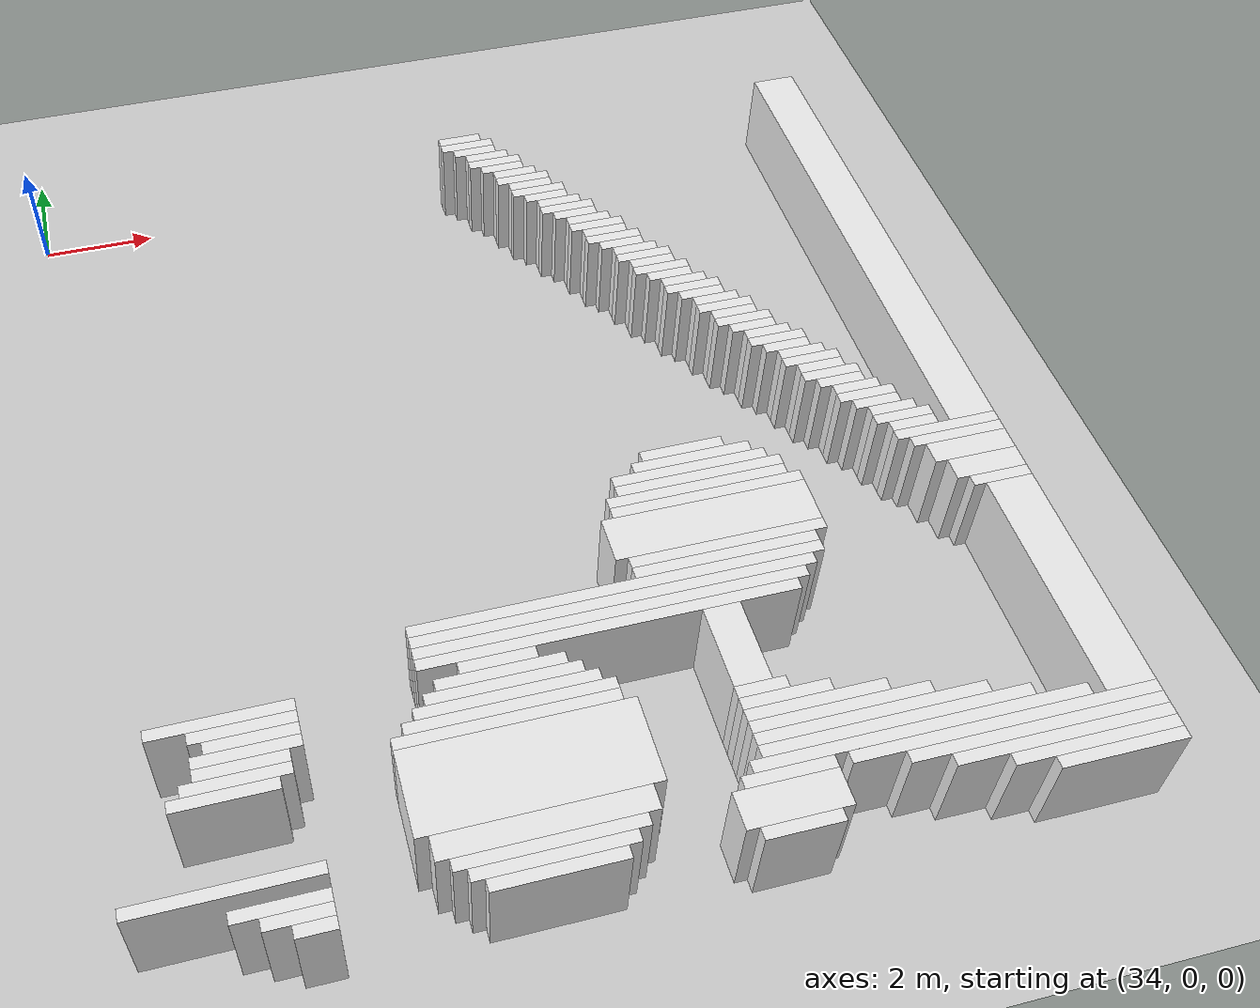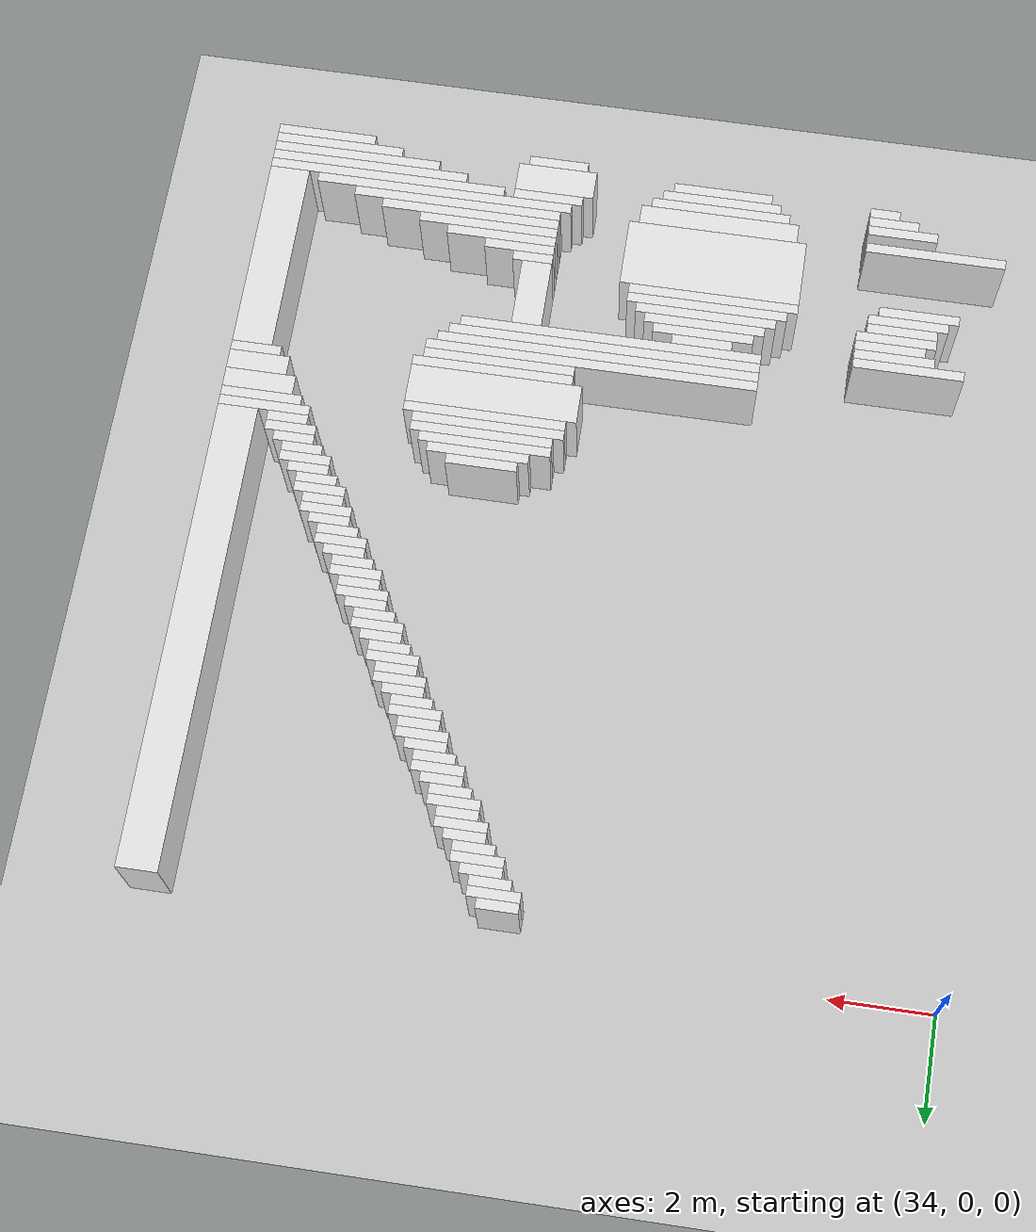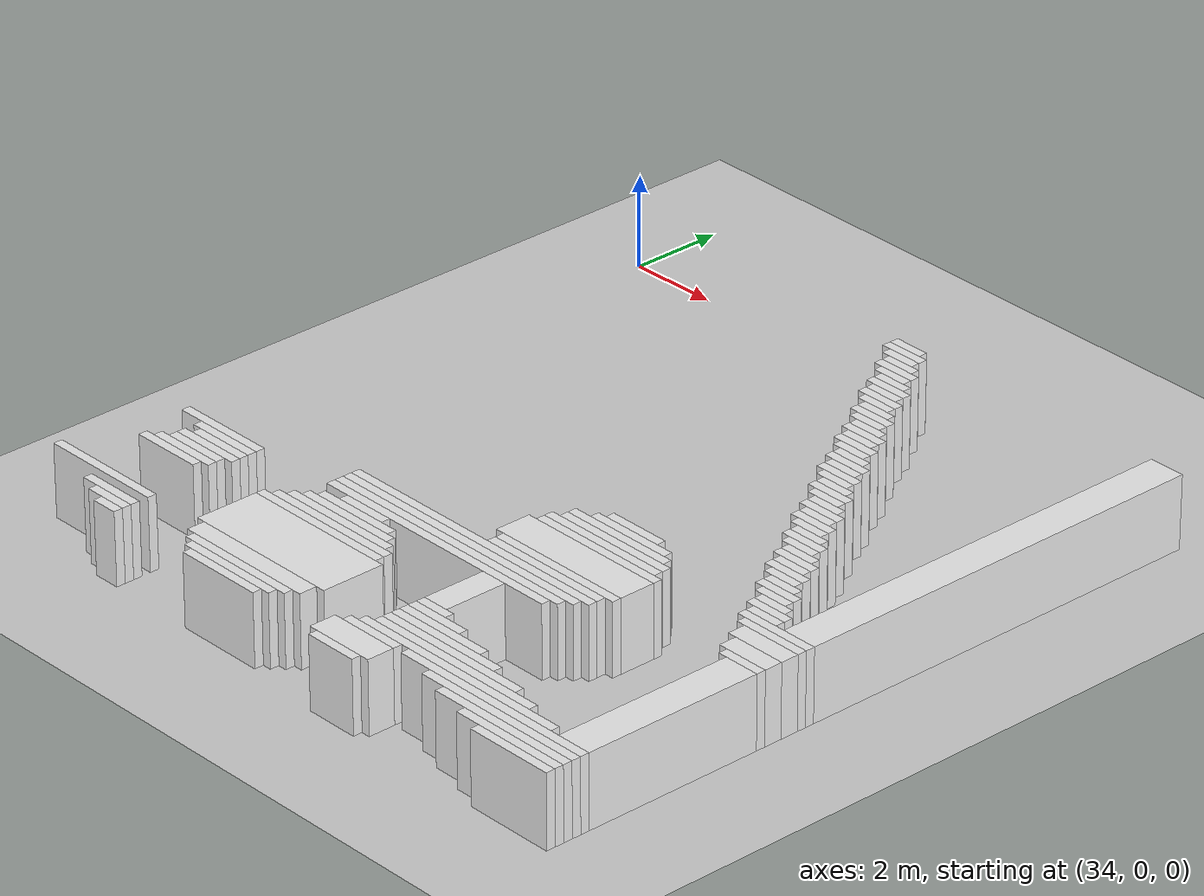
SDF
<sdf version="1.7">
 <world name="default">
  <model name="ground_plane">
   <static>1</static>
   <link name="link">
    <collision name="collision">
     <geometry><plane><normal>0 0 1</normal><size>120 120</size></plane></geometry>
    </collision>
    <visual name="visual">
     <geometry><plane><normal>0 0 1</normal><size>120 120</size></plane></geometry>
     <material>
      <script><uri>file://media/materials/scripts/gazebo.material</uri><name>Gazebo/Grey</name></script>
     </material>
    </visual>
   </link>
  </model>
  <model name="random_complex_01_model">
   <static>1</static>
   <link name="obs_1867">
    <pose>42.2000 -0.5000 0.8000 0 0 0</pose>
    <collision name="obs_1867_col"><geometry><box><size>0.8000 0.2000 1.6000</size></box></geometry></collision>
    <visual name="obs_1867_vis">
     <geometry><box><size>0.8000 0.2000 1.6000</size></box></geometry>
     <material>
      <script><uri>file://media/materials/scripts/gazebo.material</uri><name>Gazebo/White</name></script>
     </material>
    </visual>
   </link>
   <link name="obs_1875">
    <pose>42.3000 -0.7000 0.8000 0 0 0</pose>
    <collision name="obs_1875_col"><geometry><box><size>1.0000 0.2000 1.6000</size></box></geometry></collision>
    <visual name="obs_1875_vis">
     <geometry><box><size>1.0000 0.2000 1.6000</size></box></geometry>
     <material>
      <script><uri>file://media/materials/scripts/gazebo.material</uri><name>Gazebo/White</name></script>
     </material>
    </visual>
   </link>
   <link name="obs_1880">
    <pose>42.4000 -0.9000 0.8000 0 0 0</pose>
    <collision name="obs_1880_col"><geometry><box><size>0.8000 0.2000 1.6000</size></box></geometry></collision>
    <visual name="obs_1880_vis">
     <geometry><box><size>0.8000 0.2000 1.6000</size></box></geometry>
     <material>
      <script><uri>file://media/materials/scripts/gazebo.material</uri><name>Gazebo/White</name></script>
     </material>
    </visual>
   </link>
   <link name="obs_1887">
    <pose>42.6000 -1.1000 0.8000 0 0 0</pose>
    <collision name="obs_1887_col"><geometry><box><size>0.8000 0.2000 1.6000</size></box></geometry></collision>
    <visual name="obs_1887_vis">
     <geometry><box><size>0.8000 0.2000 1.6000</size></box></geometry>
     <material>
      <script><uri>file://media/materials/scripts/gazebo.material</uri><name>Gazebo/White</name></script>
     </material>
    </visual>
   </link>
   <link name="obs_1894">
    <pose>42.7000 -1.3000 0.8000 0 0 0</pose>
    <collision name="obs_1894_col"><geometry><box><size>1.0000 0.2000 1.6000</size></box></geometry></collision>
    <visual name="obs_1894_vis">
     <geometry><box><size>1.0000 0.2000 1.6000</size></box></geometry>
     <material>
      <script><uri>file://media/materials/scripts/gazebo.material</uri><name>Gazebo/White</name></script>
     </material>
    </visual>
   </link>
   <link name="obs_1900">
    <pose>42.8000 -1.5000 0.8000 0 0 0</pose>
    <collision name="obs_1900_col"><geometry><box><size>0.8000 0.2000 1.6000</size></box></geometry></collision>
    <visual name="obs_1900_vis">
     <geometry><box><size>0.8000 0.2000 1.6000</size></box></geometry>
     <material>
      <script><uri>file://media/materials/scripts/gazebo.material</uri><name>Gazebo/White</name></script>
     </material>
    </visual>
   </link>
   <link name="obs_1906">
    <pose>43.0000 -1.7000 0.8000 0 0 0</pose>
    <collision name="obs_1906_col"><geometry><box><size>0.8000 0.2000 1.6000</size></box></geometry></collision>
    <visual name="obs_1906_vis">
     <geometry><box><size>0.8000 0.2000 1.6000</size></box></geometry>
     <material>
      <script><uri>file://media/materials/scripts/gazebo.material</uri><name>Gazebo/White</name></script>
     </material>
    </visual>
   </link>
   <link name="obs_1913">
    <pose>43.1000 -1.9000 0.8000 0 0 0</pose>
    <collision name="obs_1913_col"><geometry><box><size>1.0000 0.2000 1.6000</size></box></geometry></collision>
    <visual name="obs_1913_vis">
     <geometry><box><size>1.0000 0.2000 1.6000</size></box></geometry>
     <material>
      <script><uri>file://media/materials/scripts/gazebo.material</uri><name>Gazebo/White</name></script>
     </material>
    </visual>
   </link>
   <link name="obs_1920">
    <pose>43.2000 -2.1000 0.8000 0 0 0</pose>
    <collision name="obs_1920_col"><geometry><box><size>0.8000 0.2000 1.6000</size></box></geometry></collision>
    <visual name="obs_1920_vis">
     <geometry><box><size>0.8000 0.2000 1.6000</size></box></geometry>
     <material>
      <script><uri>file://media/materials/scripts/gazebo.material</uri><name>Gazebo/White</name></script>
     </material>
    </visual>
   </link>
   <link name="obs_1928">
    <pose>43.3000 -2.3000 0.8000 0 0 0</pose>
    <collision name="obs_1928_col"><geometry><box><size>1.0000 0.2000 1.6000</size></box></geometry></collision>
    <visual name="obs_1928_vis">
     <geometry><box><size>1.0000 0.2000 1.6000</size></box></geometry>
     <material>
      <script><uri>file://media/materials/scripts/gazebo.material</uri><name>Gazebo/White</name></script>
     </material>
    </visual>
   </link>
   <link name="obs_1935">
    <pose>43.4000 -2.5000 0.8000 0 0 0</pose>
    <collision name="obs_1935_col"><geometry><box><size>0.8000 0.2000 1.6000</size></box></geometry></collision>
    <visual name="obs_1935_vis">
     <geometry><box><size>0.8000 0.2000 1.6000</size></box></geometry>
     <material>
      <script><uri>file://media/materials/scripts/gazebo.material</uri><name>Gazebo/White</name></script>
     </material>
    </visual>
   </link>
   <link name="obs_1943">
    <pose>43.6000 -2.7000 0.8000 0 0 0</pose>
    <collision name="obs_1943_col"><geometry><box><size>0.8000 0.2000 1.6000</size></box></geometry></collision>
    <visual name="obs_1943_vis">
     <geometry><box><size>0.8000 0.2000 1.6000</size></box></geometry>
     <material>
      <script><uri>file://media/materials/scripts/gazebo.material</uri><name>Gazebo/White</name></script>
     </material>
    </visual>
   </link>
   <link name="obs_1955">
    <pose>43.7000 -2.9000 0.8000 0 0 0</pose>
    <collision name="obs_1955_col"><geometry><box><size>1.0000 0.2000 1.6000</size></box></geometry></collision>
    <visual name="obs_1955_vis">
     <geometry><box><size>1.0000 0.2000 1.6000</size></box></geometry>
     <material>
      <script><uri>file://media/materials/scripts/gazebo.material</uri><name>Gazebo/White</name></script>
     </material>
    </visual>
   </link>
   <link name="obs_1961">
    <pose>43.8000 -3.1000 0.8000 0 0 0</pose>
    <collision name="obs_1961_col"><geometry><box><size>0.8000 0.2000 1.6000</size></box></geometry></collision>
    <visual name="obs_1961_vis">
     <geometry><box><size>0.8000 0.2000 1.6000</size></box></geometry>
     <material>
      <script><uri>file://media/materials/scripts/gazebo.material</uri><name>Gazebo/White</name></script>
     </material>
    </visual>
   </link>
   <link name="obs_1966">
    <pose>44.0000 -3.3000 0.8000 0 0 0</pose>
    <collision name="obs_1966_col"><geometry><box><size>0.8000 0.2000 1.6000</size></box></geometry></collision>
    <visual name="obs_1966_vis">
     <geometry><box><size>0.8000 0.2000 1.6000</size></box></geometry>
     <material>
      <script><uri>file://media/materials/scripts/gazebo.material</uri><name>Gazebo/White</name></script>
     </material>
    </visual>
   </link>
   <link name="obs_1973">
    <pose>44.1000 -3.5000 0.8000 0 0 0</pose>
    <collision name="obs_1973_col"><geometry><box><size>1.0000 0.2000 1.6000</size></box></geometry></collision>
    <visual name="obs_1973_vis">
     <geometry><box><size>1.0000 0.2000 1.6000</size></box></geometry>
     <material>
      <script><uri>file://media/materials/scripts/gazebo.material</uri><name>Gazebo/White</name></script>
     </material>
    </visual>
   </link>
   <link name="obs_1983">
    <pose>44.2000 -3.7000 0.8000 0 0 0</pose>
    <collision name="obs_1983_col"><geometry><box><size>0.8000 0.2000 1.6000</size></box></geometry></collision>
    <visual name="obs_1983_vis">
     <geometry><box><size>0.8000 0.2000 1.6000</size></box></geometry>
     <material>
      <script><uri>file://media/materials/scripts/gazebo.material</uri><name>Gazebo/White</name></script>
     </material>
    </visual>
   </link>
   <link name="obs_1993">
    <pose>44.3000 -3.9000 0.8000 0 0 0</pose>
    <collision name="obs_1993_col"><geometry><box><size>1.0000 0.2000 1.6000</size></box></geometry></collision>
    <visual name="obs_1993_vis">
     <geometry><box><size>1.0000 0.2000 1.6000</size></box></geometry>
     <material>
      <script><uri>file://media/materials/scripts/gazebo.material</uri><name>Gazebo/White</name></script>
     </material>
    </visual>
   </link>
   <link name="obs_2003">
    <pose>44.4000 -4.1000 0.8000 0 0 0</pose>
    <collision name="obs_2003_col"><geometry><box><size>0.8000 0.2000 1.6000</size></box></geometry></collision>
    <visual name="obs_2003_vis">
     <geometry><box><size>0.8000 0.2000 1.6000</size></box></geometry>
     <material>
      <script><uri>file://media/materials/scripts/gazebo.material</uri><name>Gazebo/White</name></script>
     </material>
    </visual>
   </link>
   <link name="obs_2014">
    <pose>44.6000 -4.3000 0.8000 0 0 0</pose>
    <collision name="obs_2014_col"><geometry><box><size>0.8000 0.2000 1.6000</size></box></geometry></collision>
    <visual name="obs_2014_vis">
     <geometry><box><size>0.8000 0.2000 1.6000</size></box></geometry>
     <material>
      <script><uri>file://media/materials/scripts/gazebo.material</uri><name>Gazebo/White</name></script>
     </material>
    </visual>
   </link>
   <link name="obs_2026">
    <pose>44.7000 -4.5000 0.8000 0 0 0</pose>
    <collision name="obs_2026_col"><geometry><box><size>1.0000 0.2000 1.6000</size></box></geometry></collision>
    <visual name="obs_2026_vis">
     <geometry><box><size>1.0000 0.2000 1.6000</size></box></geometry>
     <material>
      <script><uri>file://media/materials/scripts/gazebo.material</uri><name>Gazebo/White</name></script>
     </material>
    </visual>
   </link>
   <link name="obs_2035">
    <pose>44.8000 -4.7000 0.8000 0 0 0</pose>
    <collision name="obs_2035_col"><geometry><box><size>0.8000 0.2000 1.6000</size></box></geometry></collision>
    <visual name="obs_2035_vis">
     <geometry><box><size>0.8000 0.2000 1.6000</size></box></geometry>
     <material>
      <script><uri>file://media/materials/scripts/gazebo.material</uri><name>Gazebo/White</name></script>
     </material>
    </visual>
   </link>
   <link name="obs_2041">
    <pose>44.9000 -4.9000 0.8000 0 0 0</pose>
    <collision name="obs_2041_col"><geometry><box><size>1.0000 0.2000 1.6000</size></box></geometry></collision>
    <visual name="obs_2041_vis">
     <geometry><box><size>1.0000 0.2000 1.6000</size></box></geometry>
     <material>
      <script><uri>file://media/materials/scripts/gazebo.material</uri><name>Gazebo/White</name></script>
     </material>
    </visual>
   </link>
   <link name="obs_2048">
    <pose>45.0000 -5.1000 0.8000 0 0 0</pose>
    <collision name="obs_2048_col"><geometry><box><size>0.8000 0.2000 1.6000</size></box></geometry></collision>
    <visual name="obs_2048_vis">
     <geometry><box><size>0.8000 0.2000 1.6000</size></box></geometry>
     <material>
      <script><uri>file://media/materials/scripts/gazebo.material</uri><name>Gazebo/White</name></script>
     </material>
    </visual>
   </link>
   <link name="obs_2054">
    <pose>45.2000 -5.3000 0.8000 0 0 0</pose>
    <collision name="obs_2054_col"><geometry><box><size>0.8000 0.2000 1.6000</size></box></geometry></collision>
    <visual name="obs_2054_vis">
     <geometry><box><size>0.8000 0.2000 1.6000</size></box></geometry>
     <material>
      <script><uri>file://media/materials/scripts/gazebo.material</uri><name>Gazebo/White</name></script>
     </material>
    </visual>
   </link>
   <link name="obs_2060">
    <pose>45.3000 -5.5000 0.8000 0 0 0</pose>
    <collision name="obs_2060_col"><geometry><box><size>1.0000 0.2000 1.6000</size></box></geometry></collision>
    <visual name="obs_2060_vis">
     <geometry><box><size>1.0000 0.2000 1.6000</size></box></geometry>
     <material>
      <script><uri>file://media/materials/scripts/gazebo.material</uri><name>Gazebo/White</name></script>
     </material>
    </visual>
   </link>
   <link name="obs_2069">
    <pose>45.4000 -5.7000 0.8000 0 0 0</pose>
    <collision name="obs_2069_col"><geometry><box><size>0.8000 0.2000 1.6000</size></box></geometry></collision>
    <visual name="obs_2069_vis">
     <geometry><box><size>0.8000 0.2000 1.6000</size></box></geometry>
     <material>
      <script><uri>file://media/materials/scripts/gazebo.material</uri><name>Gazebo/White</name></script>
     </material>
    </visual>
   </link>
   <link name="obs_2079">
    <pose>45.6000 -5.9000 0.8000 0 0 0</pose>
    <collision name="obs_2079_col"><geometry><box><size>0.8000 0.2000 1.6000</size></box></geometry></collision>
    <visual name="obs_2079_vis">
     <geometry><box><size>0.8000 0.2000 1.6000</size></box></geometry>
     <material>
      <script><uri>file://media/materials/scripts/gazebo.material</uri><name>Gazebo/White</name></script>
     </material>
    </visual>
   </link>
   <link name="obs_2083">
    <pose>45.7000 -6.1000 0.8000 0 0 0</pose>
    <collision name="obs_2083_col"><geometry><box><size>1.0000 0.2000 1.6000</size></box></geometry></collision>
    <visual name="obs_2083_vis">
     <geometry><box><size>1.0000 0.2000 1.6000</size></box></geometry>
     <material>
      <script><uri>file://media/materials/scripts/gazebo.material</uri><name>Gazebo/White</name></script>
     </material>
    </visual>
   </link>
   <link name="obs_2090">
    <pose>45.8000 -6.3000 0.8000 0 0 0</pose>
    <collision name="obs_2090_col"><geometry><box><size>0.8000 0.2000 1.6000</size></box></geometry></collision>
    <visual name="obs_2090_vis">
     <geometry><box><size>0.8000 0.2000 1.6000</size></box></geometry>
     <material>
      <script><uri>file://media/materials/scripts/gazebo.material</uri><name>Gazebo/White</name></script>
     </material>
    </visual>
   </link>
   <link name="obs_2097">
    <pose>45.9000 -6.5000 0.8000 0 0 0</pose>
    <collision name="obs_2097_col"><geometry><box><size>1.0000 0.2000 1.6000</size></box></geometry></collision>
    <visual name="obs_2097_vis">
     <geometry><box><size>1.0000 0.2000 1.6000</size></box></geometry>
     <material>
      <script><uri>file://media/materials/scripts/gazebo.material</uri><name>Gazebo/White</name></script>
     </material>
    </visual>
   </link>
   <link name="obs_2108">
    <pose>46.0000 -6.7000 0.8000 0 0 0</pose>
    <collision name="obs_2108_col"><geometry><box><size>0.8000 0.2000 1.6000</size></box></geometry></collision>
    <visual name="obs_2108_vis">
     <geometry><box><size>0.8000 0.2000 1.6000</size></box></geometry>
     <material>
      <script><uri>file://media/materials/scripts/gazebo.material</uri><name>Gazebo/White</name></script>
     </material>
    </visual>
   </link>
   <link name="obs_2115">
    <pose>46.2000 -6.9000 0.8000 0 0 0</pose>
    <collision name="obs_2115_col"><geometry><box><size>0.8000 0.2000 1.6000</size></box></geometry></collision>
    <visual name="obs_2115_vis">
     <geometry><box><size>0.8000 0.2000 1.6000</size></box></geometry>
     <material>
      <script><uri>file://media/materials/scripts/gazebo.material</uri><name>Gazebo/White</name></script>
     </material>
    </visual>
   </link>
   <link name="obs_2125">
    <pose>46.3000 -7.1000 0.8000 0 0 0</pose>
    <collision name="obs_2125_col"><geometry><box><size>1.0000 0.2000 1.6000</size></box></geometry></collision>
    <visual name="obs_2125_vis">
     <geometry><box><size>1.0000 0.2000 1.6000</size></box></geometry>
     <material>
      <script><uri>file://media/materials/scripts/gazebo.material</uri><name>Gazebo/White</name></script>
     </material>
    </visual>
   </link>
   <link name="obs_2135">
    <pose>46.4000 -7.3000 0.8000 0 0 0</pose>
    <collision name="obs_2135_col"><geometry><box><size>0.8000 0.2000 1.6000</size></box></geometry></collision>
    <visual name="obs_2135_vis">
     <geometry><box><size>0.8000 0.2000 1.6000</size></box></geometry>
     <material>
      <script><uri>file://media/materials/scripts/gazebo.material</uri><name>Gazebo/White</name></script>
     </material>
    </visual>
   </link>
   <link name="obs_2142">
    <pose>46.6000 -7.5000 0.8000 0 0 0</pose>
    <collision name="obs_2142_col"><geometry><box><size>0.8000 0.2000 1.6000</size></box></geometry></collision>
    <visual name="obs_2142_vis">
     <geometry><box><size>0.8000 0.2000 1.6000</size></box></geometry>
     <material>
      <script><uri>file://media/materials/scripts/gazebo.material</uri><name>Gazebo/White</name></script>
     </material>
    </visual>
   </link>
   <link name="obs_2150">
    <pose>46.7000 -7.7000 0.8000 0 0 0</pose>
    <collision name="obs_2150_col"><geometry><box><size>1.0000 0.2000 1.6000</size></box></geometry></collision>
    <visual name="obs_2150_vis">
     <geometry><box><size>1.0000 0.2000 1.6000</size></box></geometry>
     <material>
      <script><uri>file://media/materials/scripts/gazebo.material</uri><name>Gazebo/White</name></script>
     </material>
    </visual>
   </link>
   <link name="obs_2155">
    <pose>46.8000 -7.9000 0.8000 0 0 0</pose>
    <collision name="obs_2155_col"><geometry><box><size>0.8000 0.2000 1.6000</size></box></geometry></collision>
    <visual name="obs_2155_vis">
     <geometry><box><size>0.8000 0.2000 1.6000</size></box></geometry>
     <material>
      <script><uri>file://media/materials/scripts/gazebo.material</uri><name>Gazebo/White</name></script>
     </material>
    </visual>
   </link>
   <link name="obs_2161">
    <pose>46.9000 -8.1000 0.8000 0 0 0</pose>
    <collision name="obs_2161_col"><geometry><box><size>1.0000 0.2000 1.6000</size></box></geometry></collision>
    <visual name="obs_2161_vis">
     <geometry><box><size>1.0000 0.2000 1.6000</size></box></geometry>
     <material>
      <script><uri>file://media/materials/scripts/gazebo.material</uri><name>Gazebo/White</name></script>
     </material>
    </visual>
   </link>
   <link name="obs_2167">
    <pose>47.0000 -8.3000 0.8000 0 0 0</pose>
    <collision name="obs_2167_col"><geometry><box><size>0.8000 0.2000 1.6000</size></box></geometry></collision>
    <visual name="obs_2167_vis">
     <geometry><box><size>0.8000 0.2000 1.6000</size></box></geometry>
     <material>
      <script><uri>file://media/materials/scripts/gazebo.material</uri><name>Gazebo/White</name></script>
     </material>
    </visual>
   </link>
   <link name="obs_2174">
    <pose>47.2000 -8.5000 0.8000 0 0 0</pose>
    <collision name="obs_2174_col"><geometry><box><size>0.8000 0.2000 1.6000</size></box></geometry></collision>
    <visual name="obs_2174_vis">
     <geometry><box><size>0.8000 0.2000 1.6000</size></box></geometry>
     <material>
      <script><uri>file://media/materials/scripts/gazebo.material</uri><name>Gazebo/White</name></script>
     </material>
    </visual>
   </link>
   <link name="obs_2183">
    <pose>47.3000 -8.7000 0.8000 0 0 0</pose>
    <collision name="obs_2183_col"><geometry><box><size>1.0000 0.2000 1.6000</size></box></geometry></collision>
    <visual name="obs_2183_vis">
     <geometry><box><size>1.0000 0.2000 1.6000</size></box></geometry>
     <material>
      <script><uri>file://media/materials/scripts/gazebo.material</uri><name>Gazebo/White</name></script>
     </material>
    </visual>
   </link>
   <link name="obs_2189">
    <pose>47.4000 -8.9000 0.8000 0 0 0</pose>
    <collision name="obs_2189_col"><geometry><box><size>0.8000 0.2000 1.6000</size></box></geometry></collision>
    <visual name="obs_2189_vis">
     <geometry><box><size>0.8000 0.2000 1.6000</size></box></geometry>
     <material>
      <script><uri>file://media/materials/scripts/gazebo.material</uri><name>Gazebo/White</name></script>
     </material>
    </visual>
   </link>
   <link name="obs_2194">
    <pose>43.9000 -9.1000 0.8000 0 0 0</pose>
    <collision name="obs_2194_col"><geometry><box><size>1.4000 0.2000 1.6000</size></box></geometry></collision>
    <visual name="obs_2194_vis">
     <geometry><box><size>1.4000 0.2000 1.6000</size></box></geometry>
     <material>
      <script><uri>file://media/materials/scripts/gazebo.material</uri><name>Gazebo/White</name></script>
     </material>
    </visual>
   </link>
   <link name="obs_2195">
    <pose>47.6000 -9.1000 0.8000 0 0 0</pose>
    <collision name="obs_2195_col"><geometry><box><size>0.8000 0.2000 1.6000</size></box></geometry></collision>
    <visual name="obs_2195_vis">
     <geometry><box><size>0.8000 0.2000 1.6000</size></box></geometry>
     <material>
      <script><uri>file://media/materials/scripts/gazebo.material</uri><name>Gazebo/White</name></script>
     </material>
    </visual>
   </link>
   <link name="obs_2200">
    <pose>44.0000 -9.3000 0.8000 0 0 0</pose>
    <collision name="obs_2200_col"><geometry><box><size>2.0000 0.2000 1.6000</size></box></geometry></collision>
    <visual name="obs_2200_vis">
     <geometry><box><size>2.0000 0.2000 1.6000</size></box></geometry>
     <material>
      <script><uri>file://media/materials/scripts/gazebo.material</uri><name>Gazebo/White</name></script>
     </material>
    </visual>
   </link>
   <link name="obs_2201">
    <pose>47.7000 -9.3000 0.8000 0 0 0</pose>
    <collision name="obs_2201_col"><geometry><box><size>1.0000 0.2000 1.6000</size></box></geometry></collision>
    <visual name="obs_2201_vis">
     <geometry><box><size>1.0000 0.2000 1.6000</size></box></geometry>
     <material>
      <script><uri>file://media/materials/scripts/gazebo.material</uri><name>Gazebo/White</name></script>
     </material>
    </visual>
   </link>
   <link name="obs_2202">
    <pose>48.8000 -4.9000 0.8000 0 0 0</pose>
    <collision name="obs_2202_col"><geometry><box><size>0.8000 9.4000 1.6000</size></box></geometry></collision>
    <visual name="obs_2202_vis">
     <geometry><box><size>0.8000 9.4000 1.6000</size></box></geometry>
     <material>
      <script><uri>file://media/materials/scripts/gazebo.material</uri><name>Gazebo/White</name></script>
     </material>
    </visual>
   </link>
   <link name="obs_2207">
    <pose>43.9000 -9.5000 0.8000 0 0 0</pose>
    <collision name="obs_2207_col"><geometry><box><size>2.6000 0.2000 1.6000</size></box></geometry></collision>
    <visual name="obs_2207_vis">
     <geometry><box><size>2.6000 0.2000 1.6000</size></box></geometry>
     <material>
      <script><uri>file://media/materials/scripts/gazebo.material</uri><name>Gazebo/White</name></script>
     </material>
    </visual>
   </link>
   <link name="obs_2208">
    <pose>47.8000 -9.5000 0.8000 0 0 0</pose>
    <collision name="obs_2208_col"><geometry><box><size>0.8000 0.2000 1.6000</size></box></geometry></collision>
    <visual name="obs_2208_vis">
     <geometry><box><size>0.8000 0.2000 1.6000</size></box></geometry>
     <material>
      <script><uri>file://media/materials/scripts/gazebo.material</uri><name>Gazebo/White</name></script>
     </material>
    </visual>
   </link>
   <link name="obs_2213">
    <pose>44.0000 -9.7000 0.8000 0 0 0</pose>
    <collision name="obs_2213_col"><geometry><box><size>2.8000 0.2000 1.6000</size></box></geometry></collision>
    <visual name="obs_2213_vis">
     <geometry><box><size>2.8000 0.2000 1.6000</size></box></geometry>
     <material>
      <script><uri>file://media/materials/scripts/gazebo.material</uri><name>Gazebo/White</name></script>
     </material>
    </visual>
   </link>
   <link name="obs_2214">
    <pose>48.3000 -9.7000 0.8000 0 0 0</pose>
    <collision name="obs_2214_col"><geometry><box><size>1.8000 0.2000 1.6000</size></box></geometry></collision>
    <visual name="obs_2214_vis">
     <geometry><box><size>1.8000 0.2000 1.6000</size></box></geometry>
     <material>
      <script><uri>file://media/materials/scripts/gazebo.material</uri><name>Gazebo/White</name></script>
     </material>
    </visual>
   </link>
   <link name="obs_2219">
    <pose>43.9000 -9.9000 0.8000 0 0 0</pose>
    <collision name="obs_2219_col"><geometry><box><size>3.0000 0.2000 1.6000</size></box></geometry></collision>
    <visual name="obs_2219_vis">
     <geometry><box><size>3.0000 0.2000 1.6000</size></box></geometry>
     <material>
      <script><uri>file://media/materials/scripts/gazebo.material</uri><name>Gazebo/White</name></script>
     </material>
    </visual>
   </link>
   <link name="obs_2220">
    <pose>48.4000 -9.9000 0.8000 0 0 0</pose>
    <collision name="obs_2220_col"><geometry><box><size>1.6000 0.2000 1.6000</size></box></geometry></collision>
    <visual name="obs_2220_vis">
     <geometry><box><size>1.6000 0.2000 1.6000</size></box></geometry>
     <material>
      <script><uri>file://media/materials/scripts/gazebo.material</uri><name>Gazebo/White</name></script>
     </material>
    </visual>
   </link>
   <link name="obs_2225">
    <pose>44.0000 -10.1000 0.8000 0 0 0</pose>
    <collision name="obs_2225_col"><geometry><box><size>3.2000 0.2000 1.6000</size></box></geometry></collision>
    <visual name="obs_2225_vis">
     <geometry><box><size>3.2000 0.2000 1.6000</size></box></geometry>
     <material>
      <script><uri>file://media/materials/scripts/gazebo.material</uri><name>Gazebo/White</name></script>
     </material>
    </visual>
   </link>
   <link name="obs_2226">
    <pose>48.5000 -10.2000 0.8000 0 0 0</pose>
    <collision name="obs_2226_col"><geometry><box><size>1.4000 0.4000 1.6000</size></box></geometry></collision>
    <visual name="obs_2226_vis">
     <geometry><box><size>1.4000 0.4000 1.6000</size></box></geometry>
     <material>
      <script><uri>file://media/materials/scripts/gazebo.material</uri><name>Gazebo/White</name></script>
     </material>
    </visual>
   </link>
   <link name="obs_2238">
    <pose>48.6000 -10.6000 0.8000 0 0 0</pose>
    <collision name="obs_2238_col"><geometry><box><size>1.2000 0.4000 1.6000</size></box></geometry></collision>
    <visual name="obs_2238_vis">
     <geometry><box><size>1.2000 0.4000 1.6000</size></box></geometry>
     <material>
      <script><uri>file://media/materials/scripts/gazebo.material</uri><name>Gazebo/White</name></script>
     </material>
    </visual>
   </link>
   <link name="obs_2244">
    <pose>43.9000 -10.6000 0.8000 0 0 0</pose>
    <collision name="obs_2244_col"><geometry><box><size>3.4000 0.8000 1.6000</size></box></geometry></collision>
    <visual name="obs_2244_vis">
     <geometry><box><size>3.4000 0.8000 1.6000</size></box></geometry>
     <material>
      <script><uri>file://media/materials/scripts/gazebo.material</uri><name>Gazebo/White</name></script>
     </material>
    </visual>
   </link>
   <link name="obs_2253">
    <pose>48.7000 -10.9000 0.8000 0 0 0</pose>
    <collision name="obs_2253_col"><geometry><box><size>1.0000 0.2000 1.6000</size></box></geometry></collision>
    <visual name="obs_2253_vis">
     <geometry><box><size>1.0000 0.2000 1.6000</size></box></geometry>
     <material>
      <script><uri>file://media/materials/scripts/gazebo.material</uri><name>Gazebo/White</name></script>
     </material>
    </visual>
   </link>
   <link name="obs_2261">
    <pose>44.0000 -11.1000 0.8000 0 0 0</pose>
    <collision name="obs_2261_col"><geometry><box><size>3.2000 0.2000 1.6000</size></box></geometry></collision>
    <visual name="obs_2261_vis">
     <geometry><box><size>3.2000 0.2000 1.6000</size></box></geometry>
     <material>
      <script><uri>file://media/materials/scripts/gazebo.material</uri><name>Gazebo/White</name></script>
     </material>
    </visual>
   </link>
   <link name="obs_2265">
    <pose>43.9000 -11.3000 0.8000 0 0 0</pose>
    <collision name="obs_2265_col"><geometry><box><size>3.0000 0.2000 1.6000</size></box></geometry></collision>
    <visual name="obs_2265_vis">
     <geometry><box><size>3.0000 0.2000 1.6000</size></box></geometry>
     <material>
      <script><uri>file://media/materials/scripts/gazebo.material</uri><name>Gazebo/White</name></script>
     </material>
    </visual>
   </link>
   <link name="obs_2270">
    <pose>42.1000 -11.5000 0.8000 0 0 0</pose>
    <collision name="obs_2270_col"><geometry><box><size>6.6000 0.2000 1.6000</size></box></geometry></collision>
    <visual name="obs_2270_vis">
     <geometry><box><size>6.6000 0.2000 1.6000</size></box></geometry>
     <material>
      <script><uri>file://media/materials/scripts/gazebo.material</uri><name>Gazebo/White</name></script>
     </material>
    </visual>
   </link>
   <link name="obs_2278">
    <pose>42.0000 -11.7000 0.8000 0 0 0</pose>
    <collision name="obs_2278_col"><geometry><box><size>6.4000 0.2000 1.6000</size></box></geometry></collision>
    <visual name="obs_2278_vis">
     <geometry><box><size>6.4000 0.2000 1.6000</size></box></geometry>
     <material>
      <script><uri>file://media/materials/scripts/gazebo.material</uri><name>Gazebo/White</name></script>
     </material>
    </visual>
   </link>
   <link name="obs_2284">
    <pose>41.9000 -11.9000 0.8000 0 0 0</pose>
    <collision name="obs_2284_col"><geometry><box><size>6.2000 0.2000 1.6000</size></box></geometry></collision>
    <visual name="obs_2284_vis">
     <geometry><box><size>6.2000 0.2000 1.6000</size></box></geometry>
     <material>
      <script><uri>file://media/materials/scripts/gazebo.material</uri><name>Gazebo/White</name></script>
     </material>
    </visual>
   </link>
   <link name="obs_2290">
    <pose>41.8000 -12.1000 0.8000 0 0 0</pose>
    <collision name="obs_2290_col"><geometry><box><size>6.0000 0.2000 1.6000</size></box></geometry></collision>
    <visual name="obs_2290_vis">
     <geometry><box><size>6.0000 0.2000 1.6000</size></box></geometry>
     <material>
      <script><uri>file://media/materials/scripts/gazebo.material</uri><name>Gazebo/White</name></script>
     </material>
    </visual>
   </link>
   <link name="obs_2294">
    <pose>35.9000 -12.3000 0.8000 0 0 0</pose>
    <collision name="obs_2294_col"><geometry><box><size>2.2000 0.2000 1.6000</size></box></geometry></collision>
    <visual name="obs_2294_vis">
     <geometry><box><size>2.2000 0.2000 1.6000</size></box></geometry>
     <material>
      <script><uri>file://media/materials/scripts/gazebo.material</uri><name>Gazebo/White</name></script>
     </material>
    </visual>
   </link>
   <link name="obs_2295">
    <pose>40.0000 -12.3000 0.8000 0 0 0</pose>
    <collision name="obs_2295_col"><geometry><box><size>1.2000 0.2000 1.6000</size></box></geometry></collision>
    <visual name="obs_2295_vis">
     <geometry><box><size>1.2000 0.2000 1.6000</size></box></geometry>
     <material>
      <script><uri>file://media/materials/scripts/gazebo.material</uri><name>Gazebo/White</name></script>
     </material>
    </visual>
   </link>
   <link name="obs_2305">
    <pose>36.2000 -12.5000 0.8000 0 0 0</pose>
    <collision name="obs_2305_col"><geometry><box><size>1.6000 0.2000 1.6000</size></box></geometry></collision>
    <visual name="obs_2305_vis">
     <geometry><box><size>1.6000 0.2000 1.6000</size></box></geometry>
     <material>
      <script><uri>file://media/materials/scripts/gazebo.material</uri><name>Gazebo/White</name></script>
     </material>
    </visual>
   </link>
   <link name="obs_2306">
    <pose>40.0000 -12.5000 0.8000 0 0 0</pose>
    <collision name="obs_2306_col"><geometry><box><size>2.0000 0.2000 1.6000</size></box></geometry></collision>
    <visual name="obs_2306_vis">
     <geometry><box><size>2.0000 0.2000 1.6000</size></box></geometry>
     <material>
      <script><uri>file://media/materials/scripts/gazebo.material</uri><name>Gazebo/White</name></script>
     </material>
    </visual>
   </link>
   <link name="obs_2311">
    <pose>36.3000 -12.7000 0.8000 0 0 0</pose>
    <collision name="obs_2311_col"><geometry><box><size>1.4000 0.2000 1.6000</size></box></geometry></collision>
    <visual name="obs_2311_vis">
     <geometry><box><size>1.4000 0.2000 1.6000</size></box></geometry>
     <material>
      <script><uri>file://media/materials/scripts/gazebo.material</uri><name>Gazebo/White</name></script>
     </material>
    </visual>
   </link>
   <link name="obs_2312">
    <pose>40.0000 -12.7000 0.8000 0 0 0</pose>
    <collision name="obs_2312_col"><geometry><box><size>2.4000 0.2000 1.6000</size></box></geometry></collision>
    <visual name="obs_2312_vis">
     <geometry><box><size>2.4000 0.2000 1.6000</size></box></geometry>
     <material>
      <script><uri>file://media/materials/scripts/gazebo.material</uri><name>Gazebo/White</name></script>
     </material>
    </visual>
   </link>
   <link name="obs_2315">
    <pose>36.2000 -12.9000 0.8000 0 0 0</pose>
    <collision name="obs_2315_col"><geometry><box><size>1.6000 0.2000 1.6000</size></box></geometry></collision>
    <visual name="obs_2315_vis">
     <geometry><box><size>1.6000 0.2000 1.6000</size></box></geometry>
     <material>
      <script><uri>file://media/materials/scripts/gazebo.material</uri><name>Gazebo/White</name></script>
     </material>
    </visual>
   </link>
   <link name="obs_2316">
    <pose>40.0000 -12.9000 0.8000 0 0 0</pose>
    <collision name="obs_2316_col"><geometry><box><size>2.8000 0.2000 1.6000</size></box></geometry></collision>
    <visual name="obs_2316_vis">
     <geometry><box><size>2.8000 0.2000 1.6000</size></box></geometry>
     <material>
      <script><uri>file://media/materials/scripts/gazebo.material</uri><name>Gazebo/White</name></script>
     </material>
    </visual>
   </link>
   <link name="obs_2323">
    <pose>36.1000 -13.1000 0.8000 0 0 0</pose>
    <collision name="obs_2323_col"><geometry><box><size>1.4000 0.2000 1.6000</size></box></geometry></collision>
    <visual name="obs_2323_vis">
     <geometry><box><size>1.4000 0.2000 1.6000</size></box></geometry>
     <material>
      <script><uri>file://media/materials/scripts/gazebo.material</uri><name>Gazebo/White</name></script>
     </material>
    </visual>
   </link>
   <link name="obs_2324">
    <pose>40.0000 -13.1000 0.8000 0 0 0</pose>
    <collision name="obs_2324_col"><geometry><box><size>3.2000 0.2000 1.6000</size></box></geometry></collision>
    <visual name="obs_2324_vis">
     <geometry><box><size>3.2000 0.2000 1.6000</size></box></geometry>
     <material>
      <script><uri>file://media/materials/scripts/gazebo.material</uri><name>Gazebo/White</name></script>
     </material>
    </visual>
   </link>
   <link name="obs_2329">
    <pose>36.0000 -13.3000 0.8000 0 0 0</pose>
    <collision name="obs_2329_col"><geometry><box><size>1.6000 0.2000 1.6000</size></box></geometry></collision>
    <visual name="obs_2329_vis">
     <geometry><box><size>1.6000 0.2000 1.6000</size></box></geometry>
     <material>
      <script><uri>file://media/materials/scripts/gazebo.material</uri><name>Gazebo/White</name></script>
     </material>
    </visual>
   </link>
   <link name="obs_2330">
    <pose>39.9000 -13.3000 0.8000 0 0 0</pose>
    <collision name="obs_2330_col"><geometry><box><size>3.4000 0.2000 1.6000</size></box></geometry></collision>
    <visual name="obs_2330_vis">
     <geometry><box><size>3.4000 0.2000 1.6000</size></box></geometry>
     <material>
      <script><uri>file://media/materials/scripts/gazebo.material</uri><name>Gazebo/White</name></script>
     </material>
    </visual>
   </link>
   <link name="obs_2331">
    <pose>43.5000 -12.9000 0.8000 0 0 0</pose>
    <collision name="obs_2331_col"><geometry><box><size>0.6000 1.4000 1.6000</size></box></geometry></collision>
    <visual name="obs_2331_vis">
     <geometry><box><size>0.6000 1.4000 1.6000</size></box></geometry>
     <material>
      <script><uri>file://media/materials/scripts/gazebo.material</uri><name>Gazebo/White</name></script>
     </material>
    </visual>
   </link>
   <link name="obs_2337">
    <pose>35.8000 -13.5000 0.8000 0 0 0</pose>
    <collision name="obs_2337_col"><geometry><box><size>1.6000 0.2000 1.6000</size></box></geometry></collision>
    <visual name="obs_2337_vis">
     <geometry><box><size>1.6000 0.2000 1.6000</size></box></geometry>
     <material>
      <script><uri>file://media/materials/scripts/gazebo.material</uri><name>Gazebo/White</name></script>
     </material>
    </visual>
   </link>
   <link name="obs_2345">
    <pose>43.6000 -13.7000 0.8000 0 0 0</pose>
    <collision name="obs_2345_col"><geometry><box><size>0.8000 0.2000 1.6000</size></box></geometry></collision>
    <visual name="obs_2345_vis">
     <geometry><box><size>0.8000 0.2000 1.6000</size></box></geometry>
     <material>
      <script><uri>file://media/materials/scripts/gazebo.material</uri><name>Gazebo/White</name></script>
     </material>
    </visual>
   </link>
   <link name="obs_2352">
    <pose>43.9000 -13.9000 0.8000 0 0 0</pose>
    <collision name="obs_2352_col"><geometry><box><size>1.4000 0.2000 1.6000</size></box></geometry></collision>
    <visual name="obs_2352_vis">
     <geometry><box><size>1.4000 0.2000 1.6000</size></box></geometry>
     <material>
      <script><uri>file://media/materials/scripts/gazebo.material</uri><name>Gazebo/White</name></script>
     </material>
    </visual>
   </link>
   <link name="obs_2358">
    <pose>44.3000 -14.1000 0.8000 0 0 0</pose>
    <collision name="obs_2358_col"><geometry><box><size>2.2000 0.2000 1.6000</size></box></geometry></collision>
    <visual name="obs_2358_vis">
     <geometry><box><size>2.2000 0.2000 1.6000</size></box></geometry>
     <material>
      <script><uri>file://media/materials/scripts/gazebo.material</uri><name>Gazebo/White</name></script>
     </material>
    </visual>
   </link>
   <link name="obs_2365">
    <pose>44.6000 -14.3000 0.8000 0 0 0</pose>
    <collision name="obs_2365_col"><geometry><box><size>2.8000 0.2000 1.6000</size></box></geometry></collision>
    <visual name="obs_2365_vis">
     <geometry><box><size>2.8000 0.2000 1.6000</size></box></geometry>
     <material>
      <script><uri>file://media/materials/scripts/gazebo.material</uri><name>Gazebo/White</name></script>
     </material>
    </visual>
   </link>
   <link name="obs_2372">
    <pose>45.0000 -14.5000 0.8000 0 0 0</pose>
    <collision name="obs_2372_col"><geometry><box><size>3.6000 0.2000 1.6000</size></box></geometry></collision>
    <visual name="obs_2372_vis">
     <geometry><box><size>3.6000 0.2000 1.6000</size></box></geometry>
     <material>
      <script><uri>file://media/materials/scripts/gazebo.material</uri><name>Gazebo/White</name></script>
     </material>
    </visual>
   </link>
   <link name="obs_2373">
    <pose>40.0000 -14.1000 0.8000 0 0 0</pose>
    <collision name="obs_2373_col"><geometry><box><size>3.6000 1.4000 1.6000</size></box></geometry></collision>
    <visual name="obs_2373_vis">
     <geometry><box><size>3.6000 1.4000 1.6000</size></box></geometry>
     <material>
      <script><uri>file://media/materials/scripts/gazebo.material</uri><name>Gazebo/White</name></script>
     </material>
    </visual>
   </link>
   <link name="obs_2381">
    <pose>45.3000 -14.7000 0.8000 0 0 0</pose>
    <collision name="obs_2381_col"><geometry><box><size>4.2000 0.2000 1.6000</size></box></geometry></collision>
    <visual name="obs_2381_vis">
     <geometry><box><size>4.2000 0.2000 1.6000</size></box></geometry>
     <material>
      <script><uri>file://media/materials/scripts/gazebo.material</uri><name>Gazebo/White</name></script>
     </material>
    </visual>
   </link>
   <link name="obs_2382">
    <pose>48.8000 -13.0000 0.8000 0 0 0</pose>
    <collision name="obs_2382_col"><geometry><box><size>0.8000 4.0000 1.6000</size></box></geometry></collision>
    <visual name="obs_2382_vis">
     <geometry><box><size>0.8000 4.0000 1.6000</size></box></geometry>
     <material>
      <script><uri>file://media/materials/scripts/gazebo.material</uri><name>Gazebo/White</name></script>
     </material>
    </visual>
   </link>
   <link name="obs_2391">
    <pose>35.6000 -14.9000 0.8000 0 0 0</pose>
    <collision name="obs_2391_col"><geometry><box><size>2.8000 0.2000 1.6000</size></box></geometry></collision>
    <visual name="obs_2391_vis">
     <geometry><box><size>2.8000 0.2000 1.6000</size></box></geometry>
     <material>
      <script><uri>file://media/materials/scripts/gazebo.material</uri><name>Gazebo/White</name></script>
     </material>
    </visual>
   </link>
   <link name="obs_2392">
    <pose>45.6000 -14.9000 0.8000 0 0 0</pose>
    <collision name="obs_2392_col"><geometry><box><size>5.2000 0.2000 1.6000</size></box></geometry></collision>
    <visual name="obs_2392_vis">
     <geometry><box><size>5.2000 0.2000 1.6000</size></box></geometry>
     <material>
      <script><uri>file://media/materials/scripts/gazebo.material</uri><name>Gazebo/White</name></script>
     </material>
    </visual>
   </link>
   <link name="obs_2396">
    <pose>40.0000 -15.0000 0.8000 0 0 0</pose>
    <collision name="obs_2396_col"><geometry><box><size>3.2000 0.4000 1.6000</size></box></geometry></collision>
    <visual name="obs_2396_vis">
     <geometry><box><size>3.2000 0.4000 1.6000</size></box></geometry>
     <material>
      <script><uri>file://media/materials/scripts/gazebo.material</uri><name>Gazebo/White</name></script>
     </material>
    </visual>
   </link>
   <link name="obs_2405">
    <pose>43.5000 -15.1000 0.8000 0 0 0</pose>
    <collision name="obs_2405_col"><geometry><box><size>1.4000 0.2000 1.6000</size></box></geometry></collision>
    <visual name="obs_2405_vis">
     <geometry><box><size>1.4000 0.2000 1.6000</size></box></geometry>
     <material>
      <script><uri>file://media/materials/scripts/gazebo.material</uri><name>Gazebo/White</name></script>
     </material>
    </visual>
   </link>
   <link name="obs_2406">
    <pose>46.8000 -15.1000 0.8000 0 0 0</pose>
    <collision name="obs_2406_col"><geometry><box><size>4.8000 0.2000 1.6000</size></box></geometry></collision>
    <visual name="obs_2406_vis">
     <geometry><box><size>4.8000 0.2000 1.6000</size></box></geometry>
     <material>
      <script><uri>file://media/materials/scripts/gazebo.material</uri><name>Gazebo/White</name></script>
     </material>
    </visual>
   </link>
   <link name="obs_2417">
    <pose>36.3000 -15.3000 0.8000 0 0 0</pose>
    <collision name="obs_2417_col"><geometry><box><size>1.4000 0.2000 1.6000</size></box></geometry></collision>
    <visual name="obs_2417_vis">
     <geometry><box><size>1.4000 0.2000 1.6000</size></box></geometry>
     <material>
      <script><uri>file://media/materials/scripts/gazebo.material</uri><name>Gazebo/White</name></script>
     </material>
    </visual>
   </link>
   <link name="obs_2418">
    <pose>40.0000 -15.3000 0.8000 0 0 0</pose>
    <collision name="obs_2418_col"><geometry><box><size>2.8000 0.2000 1.6000</size></box></geometry></collision>
    <visual name="obs_2418_vis">
     <geometry><box><size>2.8000 0.2000 1.6000</size></box></geometry>
     <material>
      <script><uri>file://media/materials/scripts/gazebo.material</uri><name>Gazebo/White</name></script>
     </material>
    </visual>
   </link>
   <link name="obs_2419">
    <pose>47.2000 -15.3000 0.8000 0 0 0</pose>
    <collision name="obs_2419_col"><geometry><box><size>4.0000 0.2000 1.6000</size></box></geometry></collision>
    <visual name="obs_2419_vis">
     <geometry><box><size>4.0000 0.2000 1.6000</size></box></geometry>
     <material>
      <script><uri>file://media/materials/scripts/gazebo.material</uri><name>Gazebo/White</name></script>
     </material>
    </visual>
   </link>
   <link name="obs_2426">
    <pose>36.5000 -15.5000 0.8000 0 0 0</pose>
    <collision name="obs_2426_col"><geometry><box><size>1.0000 0.2000 1.6000</size></box></geometry></collision>
    <visual name="obs_2426_vis">
     <geometry><box><size>1.0000 0.2000 1.6000</size></box></geometry>
     <material>
      <script><uri>file://media/materials/scripts/gazebo.material</uri><name>Gazebo/White</name></script>
     </material>
    </visual>
   </link>
   <link name="obs_2427">
    <pose>40.0000 -15.5000 0.8000 0 0 0</pose>
    <collision name="obs_2427_col"><geometry><box><size>2.4000 0.2000 1.6000</size></box></geometry></collision>
    <visual name="obs_2427_vis">
     <geometry><box><size>2.4000 0.2000 1.6000</size></box></geometry>
     <material>
      <script><uri>file://media/materials/scripts/gazebo.material</uri><name>Gazebo/White</name></script>
     </material>
    </visual>
   </link>
   <link name="obs_2428">
    <pose>47.5000 -15.5000 0.8000 0 0 0</pose>
    <collision name="obs_2428_col"><geometry><box><size>3.4000 0.2000 1.6000</size></box></geometry></collision>
    <visual name="obs_2428_vis">
     <geometry><box><size>3.4000 0.2000 1.6000</size></box></geometry>
     <material>
      <script><uri>file://media/materials/scripts/gazebo.material</uri><name>Gazebo/White</name></script>
     </material>
    </visual>
   </link>
   <link name="obs_2431">
    <pose>43.4000 -15.5000 0.8000 0 0 0</pose>
    <collision name="obs_2431_col"><geometry><box><size>1.6000 0.6000 1.6000</size></box></geometry></collision>
    <visual name="obs_2431_vis">
     <geometry><box><size>1.6000 0.6000 1.6000</size></box></geometry>
     <material>
      <script><uri>file://media/materials/scripts/gazebo.material</uri><name>Gazebo/White</name></script>
     </material>
    </visual>
   </link>
   <link name="obs_2437">
    <pose>36.7000 -15.7000 0.8000 0 0 0</pose>
    <collision name="obs_2437_col"><geometry><box><size>0.6000 0.2000 1.6000</size></box></geometry></collision>
    <visual name="obs_2437_vis">
     <geometry><box><size>0.6000 0.2000 1.6000</size></box></geometry>
     <material>
      <script><uri>file://media/materials/scripts/gazebo.material</uri><name>Gazebo/White</name></script>
     </material>
    </visual>
   </link>
   <link name="obs_2438">
    <pose>40.0000 -15.7000 0.8000 0 0 0</pose>
    <collision name="obs_2438_col"><geometry><box><size>2.0000 0.2000 1.6000</size></box></geometry></collision>
    <visual name="obs_2438_vis">
     <geometry><box><size>2.0000 0.2000 1.6000</size></box></geometry>
     <material>
      <script><uri>file://media/materials/scripts/gazebo.material</uri><name>Gazebo/White</name></script>
     </material>
    </visual>
   </link>
   <link name="obs_2439">
    <pose>47.9000 -15.7000 0.8000 0 0 0</pose>
    <collision name="obs_2439_col"><geometry><box><size>2.6000 0.2000 1.6000</size></box></geometry></collision>
    <visual name="obs_2439_vis">
     <geometry><box><size>2.6000 0.2000 1.6000</size></box></geometry>
     <material>
      <script><uri>file://media/materials/scripts/gazebo.material</uri><name>Gazebo/White</name></script>
     </material>
    </visual>
   </link>
   <link name="obs_2452">
    <pose>43.4000 -15.9000 0.8000 0 0 0</pose>
    <collision name="obs_2452_col"><geometry><box><size>1.2000 0.2000 1.6000</size></box></geometry></collision>
    <visual name="obs_2452_vis">
     <geometry><box><size>1.2000 0.2000 1.6000</size></box></geometry>
     <material>
      <script><uri>file://media/materials/scripts/gazebo.material</uri><name>Gazebo/White</name></script>
     </material>
    </visual>
   </link>
   <link name="obs_2453">
    <pose>48.2000 -15.9000 0.8000 0 0 0</pose>
    <collision name="obs_2453_col"><geometry><box><size>2.0000 0.2000 1.6000</size></box></geometry></collision>
    <visual name="obs_2453_vis">
     <geometry><box><size>2.0000 0.2000 1.6000</size></box></geometry>
     <material>
      <script><uri>file://media/materials/scripts/gazebo.material</uri><name>Gazebo/White</name></script>
     </material>
    </visual>
   </link>
  </model>
 </world>
</sdf>
